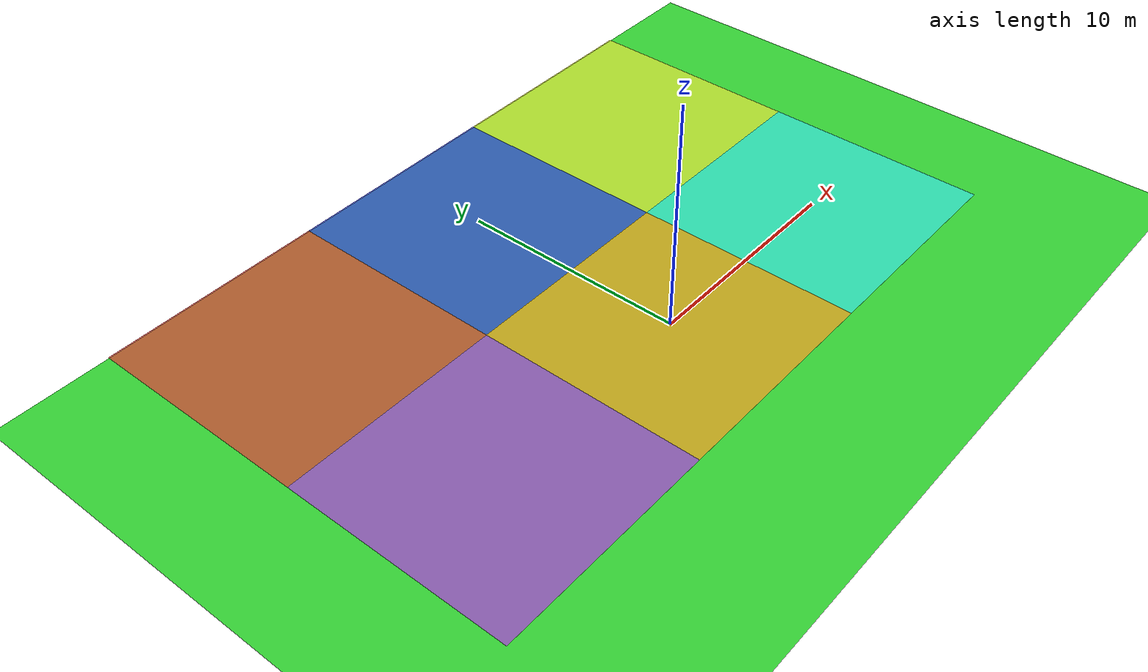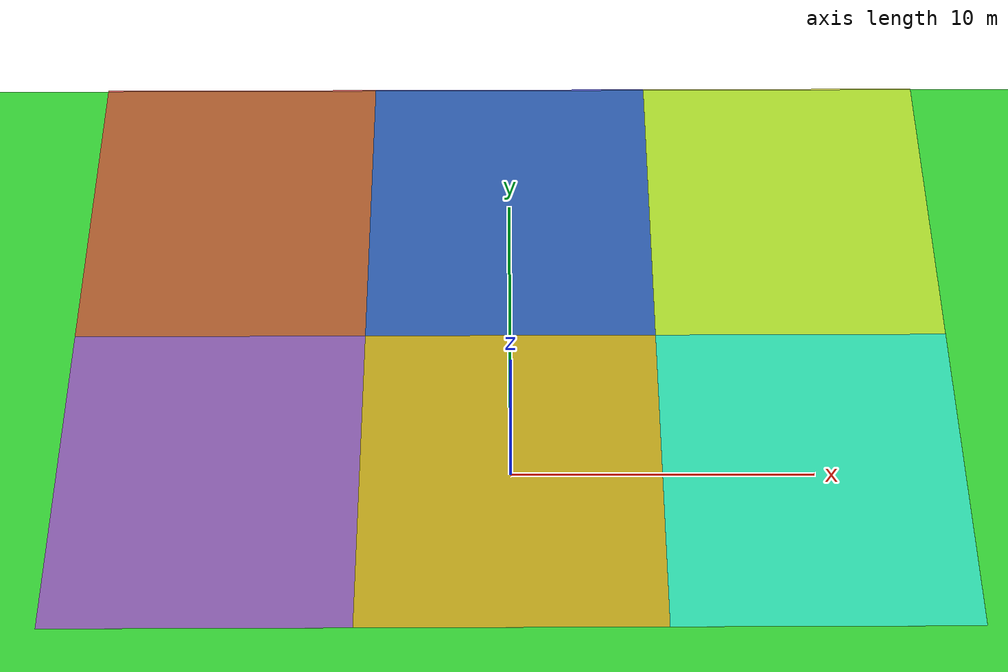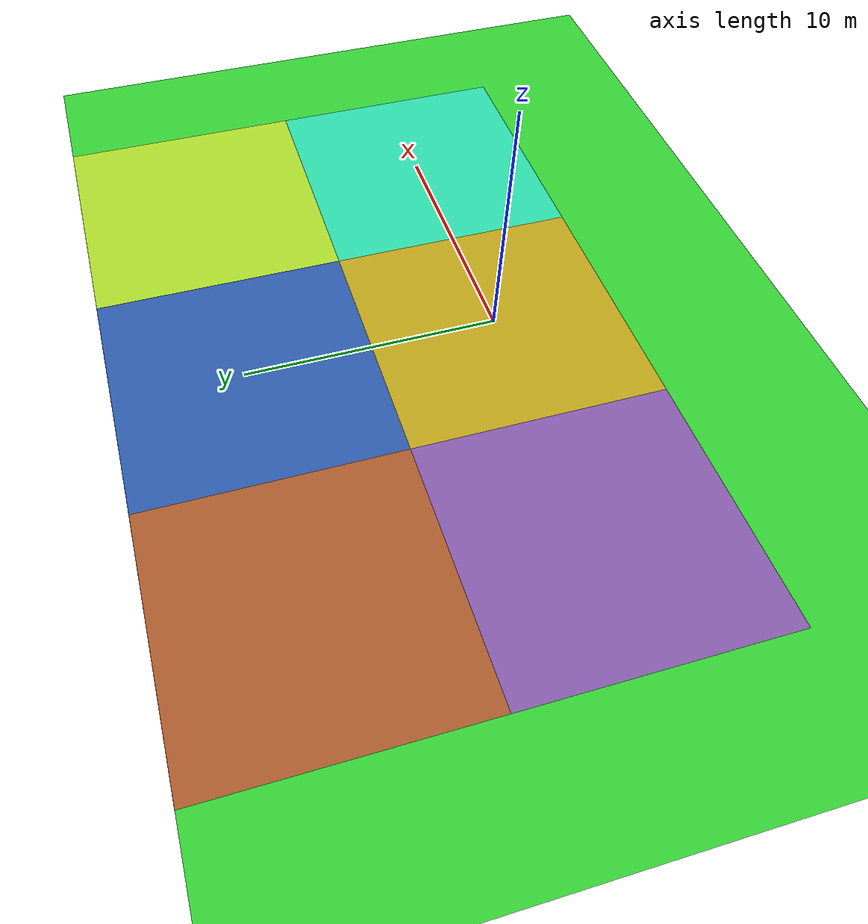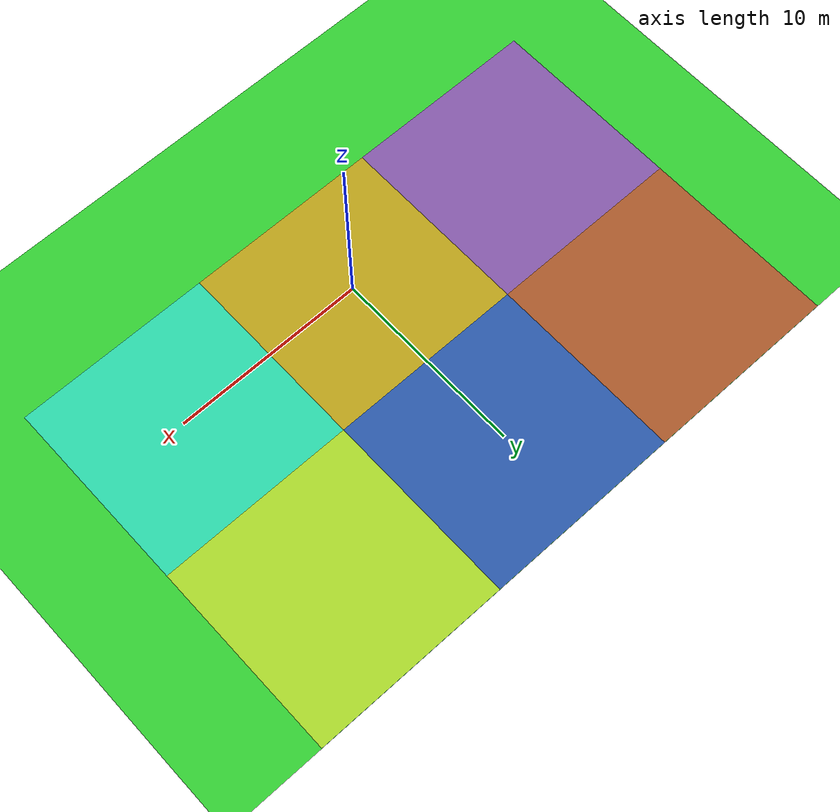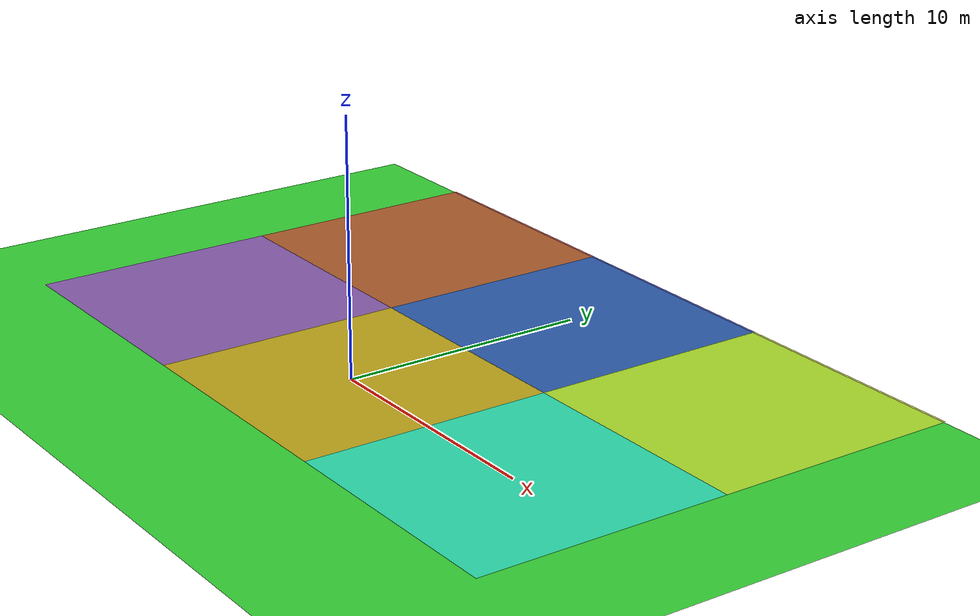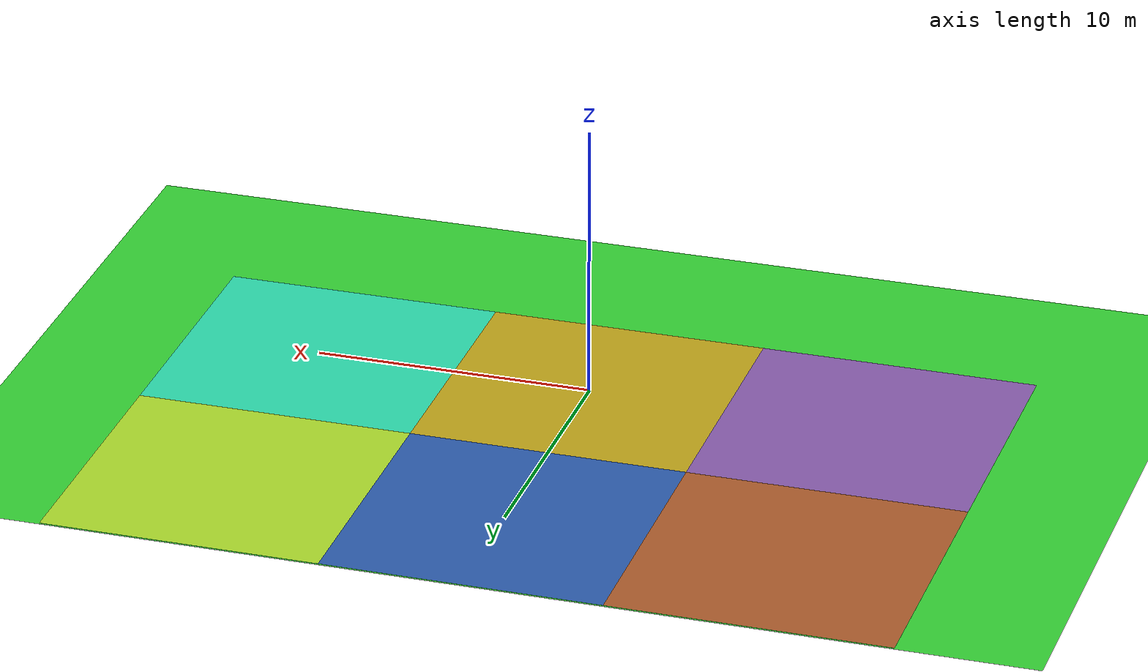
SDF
<?xml version="1.0" ?>
<sdf version="1.6">
  <world name="default">

    <!-- A global light source -->
    <include>
      <uri>model://sun</uri>
    </include>

    <!-- Ground plane with green grass -->
    <include>
      <uri>model://ground_plane</uri>
    </include>

    <!-- Physics settings -->
    <physics type="ode">
      <max_step_size>0.001</max_step_size>
      <real_time_factor>1</real_time_factor>
      <real_time_update_rate>1000</real_time_update_rate>
      <gravity>0 0 -9.8</gravity>
    </physics>

    <!-- Green field base (40m x 30m) -->
    <model name="green_field">
      <static>true</static>
      <link name="link">
        <collision name="collision">
          <geometry>
            <plane>
              <normal>0 0 1</normal>
              <size>40 30</size>
            </plane>
          </geometry>
          <surface>
            <friction>
              <ode>
                <mu>100</mu>
                <mu2>50</mu2>
              </ode>
            </friction>
          </surface>
        </collision>
        <visual name="visual">
          <geometry>
            <plane>
              <normal>0 0 1</normal>
              <size>40 30</size>
            </plane>
          </geometry>
          <material>
            <ambient>0.2 0.6 0.2 1</ambient>
            <diffuse>0.2 0.8 0.2 1</diffuse>
            <specular>0.1 0.1 0.1 1</specular>
          </material>
        </visual>
      </link>
    </model>

    <!-- Area 1: Red (Top-Left) -->
    <model name="area_1">
      <static>true</static>
      <pose>-10 10 0.01 0 0 0</pose>
      <link name="link">
        <visual name="visual">
          <geometry>
            <box>
              <size>10 10 0.01</size>
            </box>
          </geometry>
          <material>
            <ambient>0.8 0.2 0.2 0.7</ambient>
            <diffuse>0.9 0.2 0.2 0.7</diffuse>
            <specular>0.1 0.1 0.1 1</specular>
          </material>
        </visual>
      </link>
    </model>

    <!-- Area 2: Blue (Top-Center) -->
    <model name="area_2">
      <static>true</static>
      <pose>0 10 0.01 0 0 0</pose>
      <link name="link">
        <visual name="visual">
          <geometry>
            <box>
              <size>10 10 0.01</size>
            </box>
          </geometry>
          <material>
            <ambient>0.2 0.2 0.8 0.7</ambient>
            <diffuse>0.2 0.2 0.9 0.7</diffuse>
            <specular>0.1 0.1 0.1 1</specular>
          </material>
        </visual>
      </link>
    </model>

    <!-- Area 3: Yellow (Top-Right) -->
    <model name="area_3">
      <static>true</static>
      <pose>10 10 0.01 0 0 0</pose>
      <link name="link">
        <visual name="visual">
          <geometry>
            <box>
              <size>10 10 0.01</size>
            </box>
          </geometry>
          <material>
            <ambient>0.8 0.8 0.2 0.7</ambient>
            <diffuse>0.9 0.9 0.2 0.7</diffuse>
            <specular>0.1 0.1 0.1 1</specular>
          </material>
        </visual>
      </link>
    </model>

    <!-- Area 4: Purple (Bottom-Left) -->
    <model name="area_4">
      <static>true</static>
      <pose>-10 0 0.01 0 0 0</pose>
      <link name="link">
        <visual name="visual">
          <geometry>
            <box>
              <size>10 10 0.01</size>
            </box>
          </geometry>
          <material>
            <ambient>0.6 0.2 0.8 0.7</ambient>
            <diffuse>0.7 0.2 0.9 0.7</diffuse>
            <specular>0.1 0.1 0.1 1</specular>
          </material>
        </visual>
      </link>
    </model>

    <!-- Area 5: Orange (Bottom-Center) -->
    <model name="area_5">
      <static>true</static>
      <pose>0 0 0.01 0 0 0</pose>
      <link name="link">
        <visual name="visual">
          <geometry>
            <box>
              <size>10 10 0.01</size>
            </box>
          </geometry>
          <material>
            <ambient>0.9 0.5 0.1 0.7</ambient>
            <diffuse>1.0 0.6 0.1 0.7</diffuse>
            <specular>0.1 0.1 0.1 1</specular>
          </material>
        </visual>
      </link>
    </model>

    <!-- Area 6: Cyan (Bottom-Right) -->
    <model name="area_6">
      <static>true</static>
      <pose>10 0 0.01 0 0 0</pose>
      <link name="link">
        <visual name="visual">
          <geometry>
            <box>
              <size>10 10 0.01</size>
            </box>
          </geometry>
          <material>
            <ambient>0.2 0.8 0.8 0.7</ambient>
            <diffuse>0.2 0.9 0.9 0.7</diffuse>
            <specular>0.1 0.1 0.1 1</specular>
          </material>
        </visual>
      </link>
    </model>

    <!-- Area labels using text (represented as boxes for simplicity) -->
    <!-- You can add more detailed labels if needed -->

  </world>
</sdf>
